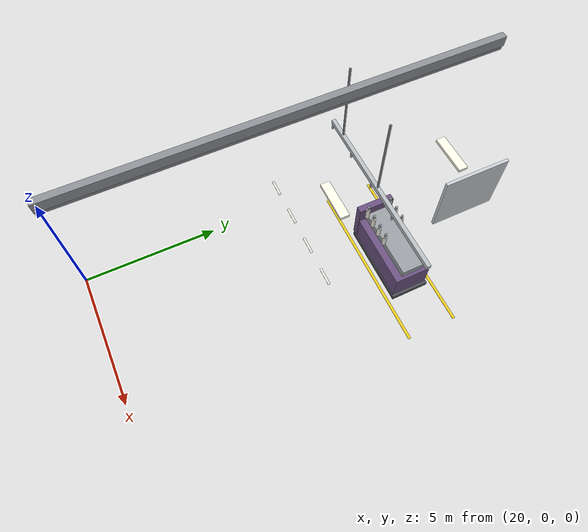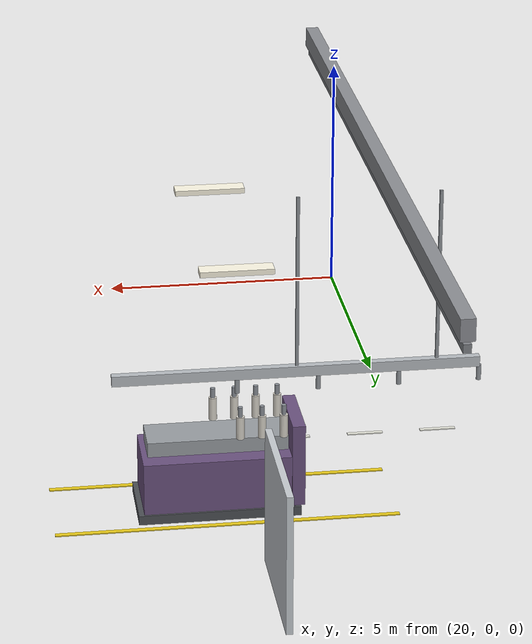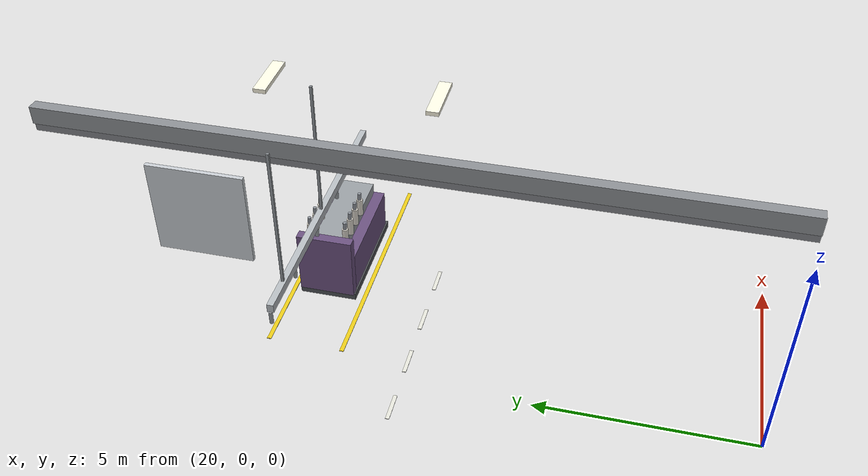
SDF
<sdf version="1.10">
 <world name="textile_mill">
  <model name="truss_3">
   <static>true</static>
   <pose>20.500 8.000 5.700 0 0 0</pose>
   <link name="l">
    <collision name="c"><geometry><box><size>0.260 16.000 0.400</size></box></geometry></collision>
    <visual name="v">
     <geometry><box><size>0.260 16.000 0.400</size></box></geometry>
     <material>
      <ambient>0.550 0.560 0.580 1.0</ambient>
      <diffuse>0.550 0.560 0.580 1.0</diffuse>
      <specular>0.18 0.18 0.18 1</specular>
      <pbr><metal><roughness>0.4</roughness><metalness>0.6</metalness></metal></pbr>
     </material>
    </visual>
   </link>
  </model>
  <model name="truss_lo_3">
   <static>true</static>
   <pose>20.500 8.000 5.380 0 0 0</pose>
   <link name="l">
    <collision name="c"><geometry><box><size>0.140 16.000 0.160</size></box></geometry></collision>
    <visual name="v">
     <geometry><box><size>0.140 16.000 0.160</size></box></geometry>
     <material>
      <ambient>0.500 0.510 0.530 1.0</ambient>
      <diffuse>0.500 0.510 0.530 1.0</diffuse>
      <specular>0.18 0.18 0.18 1</specular>
      <pbr><metal><roughness>0.65</roughness><metalness>0.6</metalness></metal></pbr>
     </material>
    </visual>
   </link>
  </model>
  <model name="lamp_3_1">
   <static>true</static>
   <pose>23.700 8.000 5.280 0 0 0</pose>
   <link name="l">
    <collision name="c"><geometry><box><size>1.300 0.300 0.100</size></box></geometry></collision>
    <visual name="v">
     <geometry><box><size>1.300 0.300 0.100</size></box></geometry>
     <material>
      <ambient>1.000 0.980 0.900 1.0</ambient>
      <diffuse>1.000 0.980 0.900 1.0</diffuse>
      <specular>0.18 0.18 0.18 1</specular>
      <pbr><metal><roughness>0.3</roughness><metalness>0.0</metalness></metal></pbr>
     </material>
    </visual>
   </link>
  </model>
  <model name="lamp_3_2">
   <static>true</static>
   <pose>23.700 12.000 5.280 0 0 0</pose>
   <link name="l">
    <collision name="c"><geometry><box><size>1.300 0.300 0.100</size></box></geometry></collision>
    <visual name="v">
     <geometry><box><size>1.300 0.300 0.100</size></box></geometry>
     <material>
      <ambient>1.000 0.980 0.900 1.0</ambient>
      <diffuse>1.000 0.980 0.900 1.0</diffuse>
      <specular>0.18 0.18 0.18 1</specular>
      <pbr><metal><roughness>0.3</roughness><metalness>0.0</metalness></metal></pbr>
     </material>
    </visual>
   </link>
  </model>
  <model name="cln_roving_1">
   <static>true</static>
   <pose>22.400 10.500 2.620 0 0 0</pose>
   <link name="l">
    <collision name="c"><geometry><box><size>6.800 0.150 0.200</size></box></geometry></collision>
    <visual name="v">
     <geometry><box><size>6.800 0.150 0.200</size></box></geometry>
     <material>
      <ambient>0.720 0.740 0.760 1.0</ambient>
      <diffuse>0.720 0.740 0.760 1.0</diffuse>
      <specular>0.18 0.18 0.18 1</specular>
      <pbr><metal><roughness>0.35</roughness><metalness>0.5</metalness></metal></pbr>
     </material>
    </visual>
   </link>
  </model>
  <model name="clnz_roving_1_0">
   <static>true</static>
   <pose>19.000 10.500 2.380 0.0000 0.0000 0.0000</pose>
   <link name="l">
    <collision name="c">
     <geometry><cylinder><radius>0.045</radius><length>0.300</length></cylinder></geometry>
    </collision>
    <visual name="v">
     <geometry><cylinder><radius>0.045</radius><length>0.300</length></cylinder></geometry>
     <material>
      <ambient>0.580 0.600 0.620 1.0</ambient>
      <diffuse>0.580 0.600 0.620 1.0</diffuse>
      <specular>0.18 0.18 0.18 1</specular>
      <pbr><metal><roughness>0.35</roughness><metalness>0.5</metalness></metal></pbr>
     </material>
    </visual>
   </link>
  </model>
  <model name="clnz_roving_1_1">
   <static>true</static>
   <pose>20.500 10.500 2.380 0.0000 0.0000 0.0000</pose>
   <link name="l">
    <collision name="c">
     <geometry><cylinder><radius>0.045</radius><length>0.300</length></cylinder></geometry>
    </collision>
    <visual name="v">
     <geometry><cylinder><radius>0.045</radius><length>0.300</length></cylinder></geometry>
     <material>
      <ambient>0.580 0.600 0.620 1.0</ambient>
      <diffuse>0.580 0.600 0.620 1.0</diffuse>
      <specular>0.18 0.18 0.18 1</specular>
      <pbr><metal><roughness>0.35</roughness><metalness>0.5</metalness></metal></pbr>
     </material>
    </visual>
   </link>
  </model>
  <model name="clnz_roving_1_2">
   <static>true</static>
   <pose>22.000 10.500 2.380 0.0000 0.0000 0.0000</pose>
   <link name="l">
    <collision name="c">
     <geometry><cylinder><radius>0.045</radius><length>0.300</length></cylinder></geometry>
    </collision>
    <visual name="v">
     <geometry><cylinder><radius>0.045</radius><length>0.300</length></cylinder></geometry>
     <material>
      <ambient>0.580 0.600 0.620 1.0</ambient>
      <diffuse>0.580 0.600 0.620 1.0</diffuse>
      <specular>0.18 0.18 0.18 1</specular>
      <pbr><metal><roughness>0.35</roughness><metalness>0.5</metalness></metal></pbr>
     </material>
    </visual>
   </link>
  </model>
  <model name="clnz_roving_1_3">
   <static>true</static>
   <pose>23.500 10.500 2.380 0.0000 0.0000 0.0000</pose>
   <link name="l">
    <collision name="c">
     <geometry><cylinder><radius>0.045</radius><length>0.300</length></cylinder></geometry>
    </collision>
    <visual name="v">
     <geometry><cylinder><radius>0.045</radius><length>0.300</length></cylinder></geometry>
     <material>
      <ambient>0.580 0.600 0.620 1.0</ambient>
      <diffuse>0.580 0.600 0.620 1.0</diffuse>
      <specular>0.18 0.18 0.18 1</specular>
      <pbr><metal><roughness>0.35</roughness><metalness>0.5</metalness></metal></pbr>
     </material>
    </visual>
   </link>
  </model>
  <model name="clnh_roving_1_0">
   <static>true</static>
   <pose>19.800 10.500 4.310 0 0 0</pose>
   <link name="l">
    <collision name="c"><geometry><box><size>0.060 0.060 3.380</size></box></geometry></collision>
    <visual name="v">
     <geometry><box><size>0.060 0.060 3.380</size></box></geometry>
     <material>
      <ambient>0.550 0.570 0.590 1.0</ambient>
      <diffuse>0.550 0.570 0.590 1.0</diffuse>
      <specular>0.18 0.18 0.18 1</specular>
      <pbr><metal><roughness>0.65</roughness><metalness>0.6</metalness></metal></pbr>
     </material>
    </visual>
   </link>
  </model>
  <model name="clnh_roving_1_1">
   <static>true</static>
   <pose>22.400 10.500 4.310 0 0 0</pose>
   <link name="l">
    <collision name="c"><geometry><box><size>0.060 0.060 3.380</size></box></geometry></collision>
    <visual name="v">
     <geometry><box><size>0.060 0.060 3.380</size></box></geometry>
     <material>
      <ambient>0.550 0.570 0.590 1.0</ambient>
      <diffuse>0.550 0.570 0.590 1.0</diffuse>
      <specular>0.18 0.18 0.18 1</specular>
      <pbr><metal><roughness>0.65</roughness><metalness>0.6</metalness></metal></pbr>
     </material>
    </visual>
   </link>
  </model>
  <model name="line_roving_10.5_a">
   <static>true</static>
   <pose>23.775 9.600 0.012 0 0 0</pose>
   <link name="l">
    <visual name="v">
     <geometry><box><size>6.350 0.100 0.020</size></box></geometry>
     <material>
      <ambient>0.920 0.800 0.100 1.0</ambient>
      <diffuse>0.920 0.800 0.100 1.0</diffuse>
      <specular>0.18 0.18 0.18 1</specular>
      <pbr><metal><roughness>0.65</roughness><metalness>0.0</metalness></metal></pbr>
     </material>
    </visual>
   </link>
  </model>
  <model name="line_roving_10.5_b">
   <static>true</static>
   <pose>23.775 11.400 0.012 0 0 0</pose>
   <link name="l">
    <visual name="v">
     <geometry><box><size>6.350 0.100 0.020</size></box></geometry>
     <material>
      <ambient>0.920 0.800 0.100 1.0</ambient>
      <diffuse>0.920 0.800 0.100 1.0</diffuse>
      <specular>0.18 0.18 0.18 1</specular>
      <pbr><metal><roughness>0.65</roughness><metalness>0.0</metalness></metal></pbr>
     </material>
    </visual>
   </link>
  </model>
  <model name="dash_12">
   <static>true</static>
   <pose>19.200 8.000 0.012 0 0 0</pose>
   <link name="l">
    <visual name="v">
     <geometry><box><size>0.700 0.090 0.020</size></box></geometry>
     <material>
      <ambient>0.900 0.900 0.860 1.0</ambient>
      <diffuse>0.900 0.900 0.860 1.0</diffuse>
      <specular>0.18 0.18 0.18 1</specular>
      <pbr><metal><roughness>0.65</roughness><metalness>0.0</metalness></metal></pbr>
     </material>
    </visual>
   </link>
  </model>
  <model name="dash_13">
   <static>true</static>
   <pose>20.650 8.000 0.012 0 0 0</pose>
   <link name="l">
    <visual name="v">
     <geometry><box><size>0.700 0.090 0.020</size></box></geometry>
     <material>
      <ambient>0.900 0.900 0.860 1.0</ambient>
      <diffuse>0.900 0.900 0.860 1.0</diffuse>
      <specular>0.18 0.18 0.18 1</specular>
      <pbr><metal><roughness>0.65</roughness><metalness>0.0</metalness></metal></pbr>
     </material>
    </visual>
   </link>
  </model>
  <model name="dash_14">
   <static>true</static>
   <pose>22.100 8.000 0.012 0 0 0</pose>
   <link name="l">
    <visual name="v">
     <geometry><box><size>0.700 0.090 0.020</size></box></geometry>
     <material>
      <ambient>0.900 0.900 0.860 1.0</ambient>
      <diffuse>0.900 0.900 0.860 1.0</diffuse>
      <specular>0.18 0.18 0.18 1</specular>
      <pbr><metal><roughness>0.65</roughness><metalness>0.0</metalness></metal></pbr>
     </material>
    </visual>
   </link>
  </model>
  <model name="dash_15">
   <static>true</static>
   <pose>23.550 8.000 0.012 0 0 0</pose>
   <link name="l">
    <visual name="v">
     <geometry><box><size>0.700 0.090 0.020</size></box></geometry>
     <material>
      <ambient>0.900 0.900 0.860 1.0</ambient>
      <diffuse>0.900 0.900 0.860 1.0</diffuse>
      <specular>0.18 0.18 0.18 1</specular>
      <pbr><metal><roughness>0.65</roughness><metalness>0.0</metalness></metal></pbr>
     </material>
    </visual>
   </link>
  </model>
  <model name="roving_machine_1_plinth">
   <static>true</static>
   <pose>23.900 10.500 0.090 0 0 0</pose>
   <link name="l">
    <collision name="c"><geometry><box><size>3.000 1.400 0.180</size></box></geometry></collision>
    <visual name="v">
     <geometry><box><size>3.000 1.400 0.180</size></box></geometry>
     <material>
      <ambient>0.300 0.310 0.330 1.0</ambient>
      <diffuse>0.300 0.310 0.330 1.0</diffuse>
      <specular>0.18 0.18 0.18 1</specular>
      <pbr><metal><roughness>0.65</roughness><metalness>0.4</metalness></metal></pbr>
     </material>
    </visual>
   </link>
  </model>
  <model name="roving_machine_1_body">
   <static>true</static>
   <pose>23.900 10.500 0.680 0 0 0</pose>
   <link name="l">
    <collision name="c"><geometry><box><size>2.800 1.320 1.000</size></box></geometry></collision>
    <visual name="v">
     <geometry><box><size>2.800 1.320 1.000</size></box></geometry>
     <material>
      <ambient>0.420 0.320 0.500 1.0</ambient>
      <diffuse>0.420 0.320 0.500 1.0</diffuse>
      <specular>0.18 0.18 0.18 1</specular>
      <pbr><metal><roughness>0.45</roughness><metalness>0.25</metalness></metal></pbr>
     </material>
    </visual>
   </link>
  </model>
  <model name="roving_machine_1_draft">
   <static>true</static>
   <pose>23.900 10.500 1.360 0 0 0</pose>
   <link name="l">
    <collision name="c"><geometry><box><size>2.600 0.800 0.280</size></box></geometry></collision>
    <visual name="v">
     <geometry><box><size>2.600 0.800 0.280</size></box></geometry>
     <material>
      <ambient>0.600 0.620 0.640 1.0</ambient>
      <diffuse>0.600 0.620 0.640 1.0</diffuse>
      <specular>0.18 0.18 0.18 1</specular>
      <pbr><metal><roughness>0.3</roughness><metalness>0.6</metalness></metal></pbr>
     </material>
    </visual>
   </link>
  </model>
  <model name="roving_machine_1_bob_0_0">
   <static>true</static>
   <pose>22.700 10.060 1.740 0.0000 0.0000 0.0000</pose>
   <link name="l">
    <collision name="c">
     <geometry><cylinder><radius>0.075</radius><length>0.440</length></cylinder></geometry>
    </collision>
    <visual name="v">
     <geometry><cylinder><radius>0.075</radius><length>0.440</length></cylinder></geometry>
     <material>
      <ambient>0.860 0.840 0.800 1.0</ambient>
      <diffuse>0.860 0.840 0.800 1.0</diffuse>
      <specular>0.18 0.18 0.18 1</specular>
      <pbr><metal><roughness>0.65</roughness><metalness>0.0</metalness></metal></pbr>
     </material>
    </visual>
   </link>
  </model>
  <model name="roving_machine_1_fly_0_0">
   <static>true</static>
   <pose>22.700 10.060 2.020 0.0000 0.0000 0.0000</pose>
   <link name="l">
    <collision name="c">
     <geometry><cylinder><radius>0.045</radius><length>0.260</length></cylinder></geometry>
    </collision>
    <visual name="v">
     <geometry><cylinder><radius>0.045</radius><length>0.260</length></cylinder></geometry>
     <material>
      <ambient>0.550 0.570 0.600 1.0</ambient>
      <diffuse>0.550 0.570 0.600 1.0</diffuse>
      <specular>0.18 0.18 0.18 1</specular>
      <pbr><metal><roughness>0.25</roughness><metalness>0.7</metalness></metal></pbr>
     </material>
    </visual>
   </link>
  </model>
  <model name="roving_machine_1_bob_0_1">
   <static>true</static>
   <pose>23.100 10.060 1.740 0.0000 0.0000 0.0000</pose>
   <link name="l">
    <collision name="c">
     <geometry><cylinder><radius>0.075</radius><length>0.440</length></cylinder></geometry>
    </collision>
    <visual name="v">
     <geometry><cylinder><radius>0.075</radius><length>0.440</length></cylinder></geometry>
     <material>
      <ambient>0.860 0.840 0.800 1.0</ambient>
      <diffuse>0.860 0.840 0.800 1.0</diffuse>
      <specular>0.18 0.18 0.18 1</specular>
      <pbr><metal><roughness>0.65</roughness><metalness>0.0</metalness></metal></pbr>
     </material>
    </visual>
   </link>
  </model>
  <model name="roving_machine_1_fly_0_1">
   <static>true</static>
   <pose>23.100 10.060 2.020 0.0000 0.0000 0.0000</pose>
   <link name="l">
    <collision name="c">
     <geometry><cylinder><radius>0.045</radius><length>0.260</length></cylinder></geometry>
    </collision>
    <visual name="v">
     <geometry><cylinder><radius>0.045</radius><length>0.260</length></cylinder></geometry>
     <material>
      <ambient>0.550 0.570 0.600 1.0</ambient>
      <diffuse>0.550 0.570 0.600 1.0</diffuse>
      <specular>0.18 0.18 0.18 1</specular>
      <pbr><metal><roughness>0.25</roughness><metalness>0.7</metalness></metal></pbr>
     </material>
    </visual>
   </link>
  </model>
  <model name="roving_machine_1_bob_0_2">
   <static>true</static>
   <pose>23.500 10.060 1.740 0.0000 0.0000 0.0000</pose>
   <link name="l">
    <collision name="c">
     <geometry><cylinder><radius>0.075</radius><length>0.440</length></cylinder></geometry>
    </collision>
    <visual name="v">
     <geometry><cylinder><radius>0.075</radius><length>0.440</length></cylinder></geometry>
     <material>
      <ambient>0.860 0.840 0.800 1.0</ambient>
      <diffuse>0.860 0.840 0.800 1.0</diffuse>
      <specular>0.18 0.18 0.18 1</specular>
      <pbr><metal><roughness>0.65</roughness><metalness>0.0</metalness></metal></pbr>
     </material>
    </visual>
   </link>
  </model>
  <model name="roving_machine_1_fly_0_2">
   <static>true</static>
   <pose>23.500 10.060 2.020 0.0000 0.0000 0.0000</pose>
   <link name="l">
    <collision name="c">
     <geometry><cylinder><radius>0.045</radius><length>0.260</length></cylinder></geometry>
    </collision>
    <visual name="v">
     <geometry><cylinder><radius>0.045</radius><length>0.260</length></cylinder></geometry>
     <material>
      <ambient>0.550 0.570 0.600 1.0</ambient>
      <diffuse>0.550 0.570 0.600 1.0</diffuse>
      <specular>0.18 0.18 0.18 1</specular>
      <pbr><metal><roughness>0.25</roughness><metalness>0.7</metalness></metal></pbr>
     </material>
    </visual>
   </link>
  </model>
  <model name="roving_machine_1_bob_0_3">
   <static>true</static>
   <pose>23.900 10.060 1.740 0.0000 0.0000 0.0000</pose>
   <link name="l">
    <collision name="c">
     <geometry><cylinder><radius>0.075</radius><length>0.440</length></cylinder></geometry>
    </collision>
    <visual name="v">
     <geometry><cylinder><radius>0.075</radius><length>0.440</length></cylinder></geometry>
     <material>
      <ambient>0.860 0.840 0.800 1.0</ambient>
      <diffuse>0.860 0.840 0.800 1.0</diffuse>
      <specular>0.18 0.18 0.18 1</specular>
      <pbr><metal><roughness>0.65</roughness><metalness>0.0</metalness></metal></pbr>
     </material>
    </visual>
   </link>
  </model>
  <model name="roving_machine_1_fly_0_3">
   <static>true</static>
   <pose>23.900 10.060 2.020 0.0000 0.0000 0.0000</pose>
   <link name="l">
    <collision name="c">
     <geometry><cylinder><radius>0.045</radius><length>0.260</length></cylinder></geometry>
    </collision>
    <visual name="v">
     <geometry><cylinder><radius>0.045</radius><length>0.260</length></cylinder></geometry>
     <material>
      <ambient>0.550 0.570 0.600 1.0</ambient>
      <diffuse>0.550 0.570 0.600 1.0</diffuse>
      <specular>0.18 0.18 0.18 1</specular>
      <pbr><metal><roughness>0.25</roughness><metalness>0.7</metalness></metal></pbr>
     </material>
    </visual>
   </link>
  </model>
  <model name="roving_machine_1_bob_1_0">
   <static>true</static>
   <pose>22.700 10.940 1.740 0.0000 0.0000 0.0000</pose>
   <link name="l">
    <collision name="c">
     <geometry><cylinder><radius>0.075</radius><length>0.440</length></cylinder></geometry>
    </collision>
    <visual name="v">
     <geometry><cylinder><radius>0.075</radius><length>0.440</length></cylinder></geometry>
     <material>
      <ambient>0.860 0.840 0.800 1.0</ambient>
      <diffuse>0.860 0.840 0.800 1.0</diffuse>
      <specular>0.18 0.18 0.18 1</specular>
      <pbr><metal><roughness>0.65</roughness><metalness>0.0</metalness></metal></pbr>
     </material>
    </visual>
   </link>
  </model>
  <model name="roving_machine_1_fly_1_0">
   <static>true</static>
   <pose>22.700 10.940 2.020 0.0000 0.0000 0.0000</pose>
   <link name="l">
    <collision name="c">
     <geometry><cylinder><radius>0.045</radius><length>0.260</length></cylinder></geometry>
    </collision>
    <visual name="v">
     <geometry><cylinder><radius>0.045</radius><length>0.260</length></cylinder></geometry>
     <material>
      <ambient>0.550 0.570 0.600 1.0</ambient>
      <diffuse>0.550 0.570 0.600 1.0</diffuse>
      <specular>0.18 0.18 0.18 1</specular>
      <pbr><metal><roughness>0.25</roughness><metalness>0.7</metalness></metal></pbr>
     </material>
    </visual>
   </link>
  </model>
  <model name="roving_machine_1_bob_1_1">
   <static>true</static>
   <pose>23.100 10.940 1.740 0.0000 0.0000 0.0000</pose>
   <link name="l">
    <collision name="c">
     <geometry><cylinder><radius>0.075</radius><length>0.440</length></cylinder></geometry>
    </collision>
    <visual name="v">
     <geometry><cylinder><radius>0.075</radius><length>0.440</length></cylinder></geometry>
     <material>
      <ambient>0.860 0.840 0.800 1.0</ambient>
      <diffuse>0.860 0.840 0.800 1.0</diffuse>
      <specular>0.18 0.18 0.18 1</specular>
      <pbr><metal><roughness>0.65</roughness><metalness>0.0</metalness></metal></pbr>
     </material>
    </visual>
   </link>
  </model>
  <model name="roving_machine_1_fly_1_1">
   <static>true</static>
   <pose>23.100 10.940 2.020 0.0000 0.0000 0.0000</pose>
   <link name="l">
    <collision name="c">
     <geometry><cylinder><radius>0.045</radius><length>0.260</length></cylinder></geometry>
    </collision>
    <visual name="v">
     <geometry><cylinder><radius>0.045</radius><length>0.260</length></cylinder></geometry>
     <material>
      <ambient>0.550 0.570 0.600 1.0</ambient>
      <diffuse>0.550 0.570 0.600 1.0</diffuse>
      <specular>0.18 0.18 0.18 1</specular>
      <pbr><metal><roughness>0.25</roughness><metalness>0.7</metalness></metal></pbr>
     </material>
    </visual>
   </link>
  </model>
  <model name="roving_machine_1_bob_1_2">
   <static>true</static>
   <pose>23.500 10.940 1.740 0.0000 0.0000 0.0000</pose>
   <link name="l">
    <collision name="c">
     <geometry><cylinder><radius>0.075</radius><length>0.440</length></cylinder></geometry>
    </collision>
    <visual name="v">
     <geometry><cylinder><radius>0.075</radius><length>0.440</length></cylinder></geometry>
     <material>
      <ambient>0.860 0.840 0.800 1.0</ambient>
      <diffuse>0.860 0.840 0.800 1.0</diffuse>
      <specular>0.18 0.18 0.18 1</specular>
      <pbr><metal><roughness>0.65</roughness><metalness>0.0</metalness></metal></pbr>
     </material>
    </visual>
   </link>
  </model>
  <model name="roving_machine_1_fly_1_2">
   <static>true</static>
   <pose>23.500 10.940 2.020 0.0000 0.0000 0.0000</pose>
   <link name="l">
    <collision name="c">
     <geometry><cylinder><radius>0.045</radius><length>0.260</length></cylinder></geometry>
    </collision>
    <visual name="v">
     <geometry><cylinder><radius>0.045</radius><length>0.260</length></cylinder></geometry>
     <material>
      <ambient>0.550 0.570 0.600 1.0</ambient>
      <diffuse>0.550 0.570 0.600 1.0</diffuse>
      <specular>0.18 0.18 0.18 1</specular>
      <pbr><metal><roughness>0.25</roughness><metalness>0.7</metalness></metal></pbr>
     </material>
    </visual>
   </link>
  </model>
  <model name="roving_machine_1_end_a">
   <static>true</static>
   <pose>22.450 10.500 1.000 0 0 0</pose>
   <link name="l">
    <collision name="c"><geometry><box><size>0.240 1.360 1.600</size></box></geometry></collision>
    <visual name="v">
     <geometry><box><size>0.240 1.360 1.600</size></box></geometry>
     <material>
      <ambient>0.420 0.320 0.500 1.0</ambient>
      <diffuse>0.420 0.320 0.500 1.0</diffuse>
      <specular>0.18 0.18 0.18 1</specular>
      <pbr><metal><roughness>0.65</roughness><metalness>0.0</metalness></metal></pbr>
     </material>
    </visual>
   </link>
  </model>
  <model name="office_wall_w">
   <static>true</static>
   <pose>23.250 14.100 1.300 0 0 0</pose>
   <link name="l">
    <collision name="c"><geometry><box><size>0.120 2.600 2.600</size></box></geometry></collision>
    <visual name="v">
     <geometry><box><size>0.120 2.600 2.600</size></box></geometry>
     <material>
      <ambient>0.780 0.800 0.820 1.0</ambient>
      <diffuse>0.780 0.800 0.820 1.0</diffuse>
      <specular>0.18 0.18 0.18 1</specular>
      <pbr><metal><roughness>0.6</roughness><metalness>0.0</metalness></metal></pbr>
     </material>
    </visual>
   </link>
  </model>
 </world>
</sdf>
